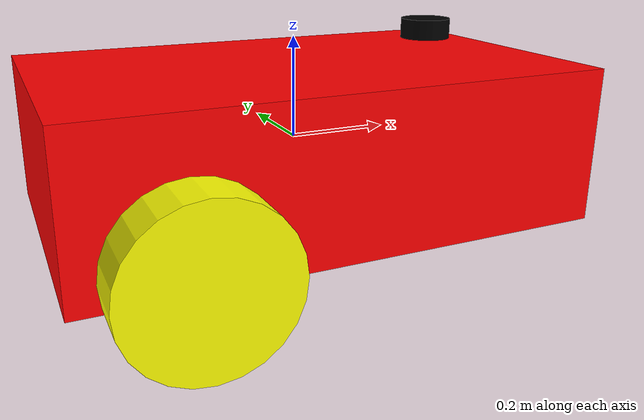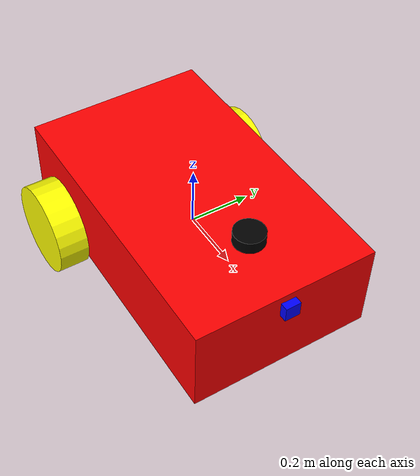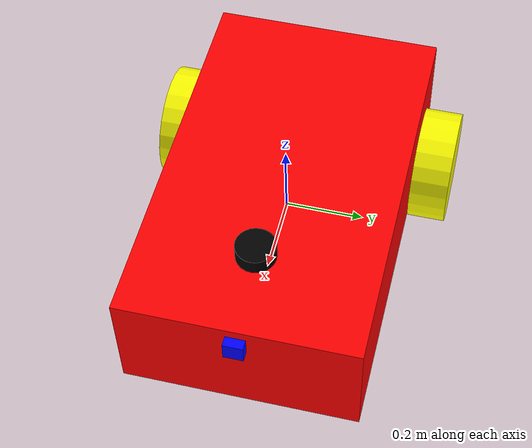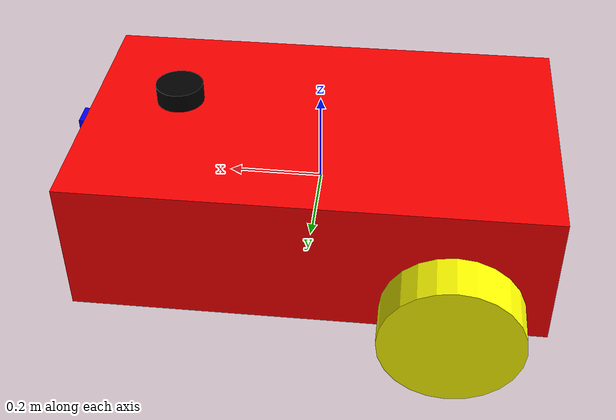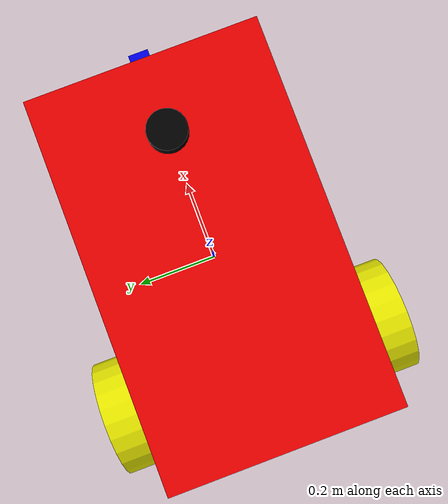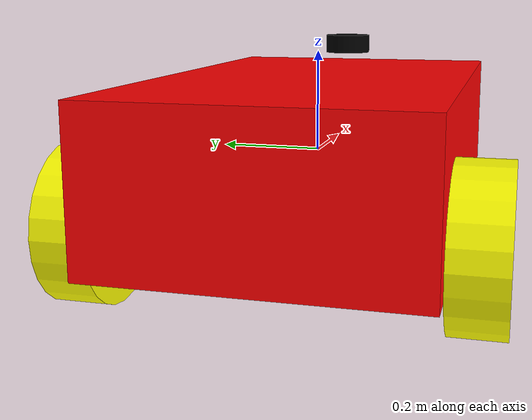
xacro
<?xml version="1.0"?>

<robot name="differential_drive_robot"
    xmlns:xacro="http://www.ros.org/wiki/xacro">

  <!-- PROPRIETES -->

  <!-- Body -->

<xacro:property name="body_link_x_dim" value="1.0"/>
<xacro:property name="body_link_y_dim" value="0.6"/>
<xacro:property name="body_link_z_dim" value="0.3"/>

  <!-- Wheels -->

<xacro:property name="wheel_link_radius" value="0.15"/>
<xacro:property name="wheel_link_length" value="0.1"/>
<xacro:property name="wheel_link_z_location" value="-0.1"/>

  <!-- Caster -->

<xacro:property name="caster_link_radius" value="0.15"/>
<xacro:property name="caster_link_z_location" value="-0.1"/>

  <!-- Density -->

<xacro:property name="body_density" value="2710.0"/>
<xacro:property name="wheel_density" value="2710.0"/>
<xacro:property name="caster_density" value="2710.0"/>

  <!-- Pi -->

<xacro:property name="pi_const" value="3.14159265"/>

  <!-- MASSES -->

<xacro:property name="body_mass"
value="${body_density * body_link_x_dim * body_link_y_dim * body_link_z_dim}"/>

<xacro:property name="wheel_mass"
value="${wheel_density * pi_const * wheel_link_radius * wheel_link_radius * wheel_link_length}"/>

<xacro:property name="caster_mass"
value="${caster_density * (4.0/3.0) * pi_const * caster_link_radius * caster_link_radius * caster_link_radius}"/>

  <!-- INERTIAS -->

<xacro:property name="Iz_wheel"
value="${0.5 * wheel_mass * wheel_link_radius * wheel_link_radius}"/>

<xacro:property name="I_wheel"
value="${(1.0/12.0) * wheel_mass *
(3.0 * wheel_link_radius * wheel_link_radius +
wheel_link_length * wheel_link_length)}"/>

<xacro:property name="I_caster"
value="${(2.0/5.0) * caster_mass *
caster_link_radius * caster_link_radius}"/>

  <!-- WHEEL INERTIA MACRO -->

<xacro:macro name="inertia_wheel">

```
<inertial>

  <origin xyz="0 0 0" rpy="0 0 0"/>

  <mass value="${wheel_mass}"/>

  <inertia
    ixx="${I_wheel}"
    ixy="0"
    ixz="0"
    iyy="${I_wheel}"
    iyz="0"
    izz="${Iz_wheel}"/>

</inertial>
```

</xacro:macro>

  <!-- CASTER INERTIA MACRO -->

<xacro:macro name="inertia_caster">

```
<inertial>

  <origin xyz="0 0 0" rpy="0 0 0"/>

  <mass value="${caster_mass}"/>

  <inertia
    ixx="${I_caster}"
    ixy="0"
    ixz="0"
    iyy="${I_caster}"
    iyz="0"
    izz="${I_caster}"/>

</inertial>
```

</xacro:macro>

  <!-- GAZEBO -->

<xacro:include filename="$(find my_robot)/model/robot.gazebo"/>

  <!-- BASE LINK -->

  <!--
       IMPORTANT :
       base_link est le ROOT LINK.

       Il ne contient PAS d'inertie.
       Cela évite le problème KDL avec un root link ayant
       une inertie.
  -->

  <link name="base_link"/>

  <!-- BASE -> BODY -->

  <joint name="base_to_body_joint" type="fixed">

```
<parent link="base_link"/>
<child link="body_link"/>

<origin
  xyz="0 0 0"
  rpy="0 0 0"/>
```

  </joint>

  <!-- BODY -->

  <link name="body_link">

```
<visual>

  <origin xyz="0 0 0" rpy="0 0 0"/>

  <geometry>

    <box
      size="${body_link_x_dim}
             ${body_link_y_dim}
             ${body_link_z_dim}"/>

  </geometry>

  <material name="red">
    <color rgba="1.0 0.0 0.0 1.0"/>
  </material>

</visual>

<collision>

  <origin xyz="0 0 0" rpy="0 0 0"/>

  <geometry>

    <box
      size="${body_link_x_dim}
             ${body_link_y_dim}
             ${body_link_z_dim}"/>

  </geometry>

</collision>

<inertial>

  <origin xyz="0 0 0" rpy="0 0 0"/>

  <mass value="${body_mass}"/>

  <inertia

    ixx="${(1.0/12.0) * body_mass *
          (body_link_y_dim * body_link_y_dim +
           body_link_z_dim * body_link_z_dim)}"

    ixy="0"
    ixz="0"

    iyy="${(1.0/12.0) * body_mass *
          (body_link_x_dim * body_link_x_dim +
           body_link_z_dim * body_link_z_dim)}"

    iyz="0"

    izz="${(1.0/12.0) * body_mass *
          (body_link_x_dim * body_link_x_dim +
           body_link_y_dim * body_link_y_dim)}"/>

</inertial>
```

  </link>

  <!-- RIGHT WHEEL -->

  <joint name="wheel1_joint" type="continuous">

```
<parent link="body_link"/>
<child link="wheel1_link"/>

<origin
  xyz="${-2 * wheel_link_radius}
       ${-body_link_y_dim/2 - wheel_link_length/2}
       ${wheel_link_z_location}"
  rpy="0 0 0"/>

<axis xyz="0 1 0"/>

<limit
  effort="1000"
  velocity="1000"/>

<dynamics
  damping="1.0"
  friction="1.0"/>
```

  </joint>

  <link name="wheel1_link">

```
<visual>

  <origin
    xyz="0 0 0"
    rpy="1.5708 0 0"/>

  <geometry>

    <cylinder
      radius="${wheel_link_radius}"
      length="${wheel_link_length}"/>

  </geometry>

  <material name="yellow">
    <color rgba="1.0 1.0 0.0 1.0"/>
  </material>

</visual>

<collision>

  <origin
    xyz="0 0 0"
    rpy="1.5708 0 0"/>

  <geometry>

    <cylinder
      radius="${wheel_link_radius}"
      length="${wheel_link_length}"/>

  </geometry>

</collision>

<xacro:inertia_wheel/>
```

  </link>

  <!-- LEFT WHEEL -->

  <joint name="wheel2_joint" type="continuous">

```
<parent link="body_link"/>
<child link="wheel2_link"/>

<origin
  xyz="${-2 * wheel_link_radius}
       ${body_link_y_dim/2 + wheel_link_length/2}
       ${wheel_link_z_location}"
  rpy="0 0 0"/>

<axis xyz="0 1 0"/>

<limit
  effort="1000"
  velocity="1000"/>

<dynamics
  damping="1.0"
  friction="1.0"/>
```

  </joint>

  <link name="wheel2_link">

```
<visual>

  <origin
    xyz="0 0 0"
    rpy="1.5708 0 0"/>

  <geometry>

    <cylinder
      radius="${wheel_link_radius}"
      length="${wheel_link_length}"/>

  </geometry>

  <material name="yellow">
    <color rgba="1.0 1.0 0.0 1.0"/>
  </material>

</visual>

<collision>

  <origin
    xyz="0 0 0"
    rpy="1.5708 0 0"/>

  <geometry>

    <cylinder
      radius="${wheel_link_radius}"
      length="${wheel_link_length}"/>

  </geometry>

</collision>

<xacro:inertia_wheel/>
```

  </link>

  <!-- CASTER -->

  <joint name="caster_joint" type="fixed">

```
<parent link="body_link"/>
<child link="caster_link"/>

<origin
  xyz="${2 * caster_link_radius}
       0
       ${caster_link_z_location}"
  rpy="0 0 0"/>
```

  </joint>

  <link name="caster_link">

```
<visual>

  <origin
    xyz="0 0 0"
    rpy="0 0 0"/>

  <geometry>

    <sphere
      radius="${caster_link_radius}"/>

  </geometry>

  <material name="blue">
    <color rgba="0.0 0.0 1.0 1.0"/>
  </material>

</visual>

<collision>

  <origin
    xyz="0 0 0"
    rpy="0 0 0"/>

  <geometry>

    <sphere
      radius="${caster_link_radius}"/>

  </geometry>

</collision>

<xacro:inertia_caster/>
```

  </link>

  <!-- LIDAR -->

  <joint name="lidar_joint" type="fixed">

```
<parent link="base_link"/>
<child link="lidar_link"/>

<origin
  xyz="0.3 0 0.2"
  rpy="0 0 0"/>
```

  </joint>

  <link name="lidar_link">

```
<visual>

  <origin xyz="0 0 0" rpy="0 0 0"/>

  <geometry>

    <cylinder
      radius="0.05"
      length="0.04"/>

  </geometry>

  <material name="black">
    <color rgba="0.0 0.0 0.0 1.0"/>
  </material>

</visual>

<collision>

  <origin xyz="0 0 0" rpy="0 0 0"/>

  <geometry>

    <cylinder
      radius="0.05"
      length="0.04"/>

  </geometry>

</collision>

<inertial>

  <origin xyz="0 0 0" rpy="0 0 0"/>

  <mass value="0.1"/>

  <inertia
    ixx="0.0001"
    ixy="0"
    ixz="0"
    iyy="0.0001"
    iyz="0"
    izz="0.0001"/>

</inertial>
```

  </link>

  <!-- CAMERA -->

  <joint name="camera_joint" type="fixed">

```
<parent link="base_link"/>
<child link="camera_link"/>

<origin
  xyz="0.5 0 0.1"
  rpy="0 0 0"/>
```

  </joint>

  <link name="camera_link">

```
<visual>

  <origin xyz="0 0 0" rpy="0 0 0"/>

  <geometry>

    <box
      size="0.05 0.05 0.05"/>

  </geometry>

  <material name="blue">
    <color rgba="0.0 0.0 1.0 1.0"/>
  </material>

</visual>

<collision>

  <origin xyz="0 0 0" rpy="0 0 0"/>

  <geometry>

    <box
      size="0.05 0.05 0.05"/>

  </geometry>

</collision>

<inertial>

  <origin xyz="0 0 0" rpy="0 0 0"/>

  <mass value="0.05"/>

  <inertia
    ixx="0.00001"
    ixy="0"
    ixz="0"
    iyy="0.00001"
    iyz="0"
    izz="0.00001"/>

</inertial>
```

  </link>

</robot>
